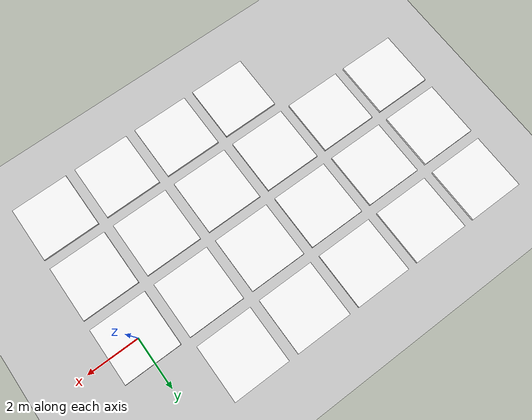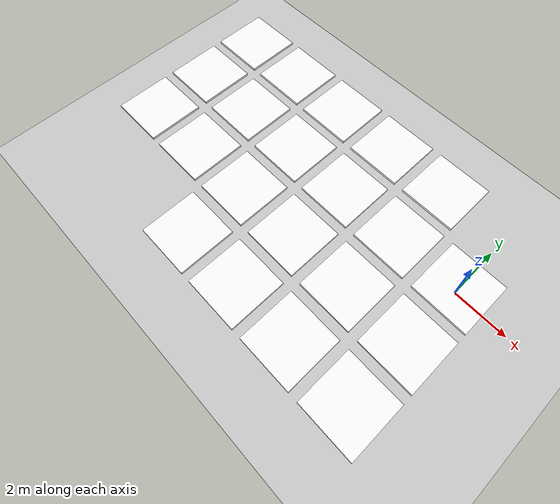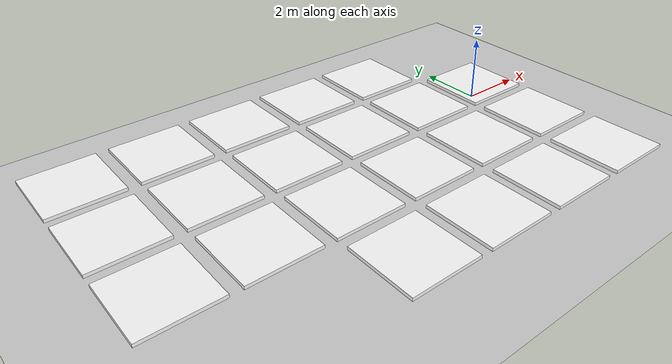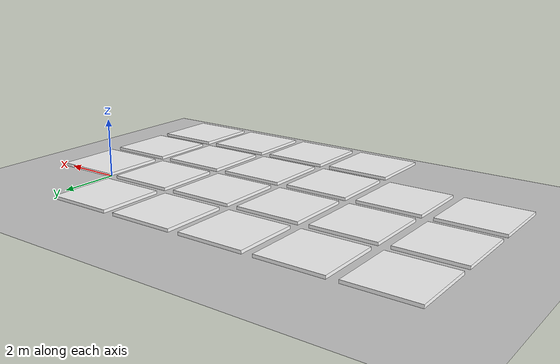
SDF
<sdf version="1.7">
 <world name="default">
  <model name="ground_plane">
   <static>1</static>
   <link name="link">
    <collision name="collision">
     <geometry><plane><normal>0 0 1</normal><size>100 100</size></plane></geometry>
     <surface>
      <contact><collide_bitmask>65535</collide_bitmask></contact>
      <friction><ode><mu>100</mu><mu2>50</mu2></ode></friction>
     </surface>
    </collision>
    <visual name="visual">
     <cast_shadows>0</cast_shadows>
     <geometry><plane><normal>0 0 1</normal><size>100 100</size></plane></geometry>
     <material>
      <script><uri>file://media/materials/scripts/gazebo.material</uri><name>Gazebo/Grey</name></script>
     </material>
    </visual>
   </link>
  </model>
  <model name="top_view_fuel_cluster_0_0">
   <link name="link">
    <inertial>
     <mass>0.489843</mass>
     <inertia>
      <ixx>0.0410659</ixx>
      <ixy>0</ixy>
      <ixz>0</ixz>
      <iyy>0.0410658</iyy>
      <iyz>0</iyz>
      <izz>0.0816405</izz>
     </inertia>
    </inertial>
    <visual name="visual">
     <geometry><box><size>2.14 2.14 0.099999</size></box></geometry>
     <material>
      <script>
       <uri>model://top_view_fuel_cluster/materials/scripts</uri>
       <uri>model://top_view_fuel_cluster/materials/textures</uri>
       <name>snf/Diffuse</name>
      </script>
      <shader type="pixel"><normal_map>__default__</normal_map></shader>
      <ambient>0.3 0.3 0.3 1</ambient>
      <diffuse>1 1 1 1</diffuse>
      <specular>0.01 0.01 0.01 1</specular>
      <emissive>0 0 0 1</emissive>
     </material>
    </visual>
    <collision name="collision">
     <geometry><box><size>2.14 2.14 0.100001</size></box></geometry>
     <surface>
      <friction>
       <ode><mu>1</mu><mu2>1</mu2><fdir1>0 0 0</fdir1><slip1>0</slip1><slip2>0</slip2></ode>
       <torsional>
        <coefficient>1</coefficient>
        <patch_radius>0</patch_radius>
        <surface_radius>0</surface_radius>
        <use_patch_radius>1</use_patch_radius>
        <ode><slip>0</slip></ode>
       </torsional>
      </friction>
      <bounce><restitution_coefficient>0</restitution_coefficient><threshold>1e+06</threshold></bounce>
      <contact>
       <collide_without_contact>0</collide_without_contact>
       <collide_without_contact_bitmask>1</collide_without_contact_bitmask>
       <collide_bitmask>1</collide_bitmask>
       <ode>
        <soft_cfm>0</soft_cfm>
        <soft_erp>0.2</soft_erp>
        <kp>1e+13</kp>
        <kd>1</kd>
        <max_vel>0.01</max_vel>
        <min_depth>0</min_depth>
       </ode>
       <bullet>
        <split_impulse>1</split_impulse>
        <split_impulse_penetration_threshold>-0.01</split_impulse_penetration_threshold>
        <soft_cfm>0</soft_cfm>
        <soft_erp>0.2</soft_erp>
        <kp>1e+13</kp>
        <kd>1</kd>
       </bullet>
      </contact>
     </surface>
    </collision>
   </link>
   <static>0</static>
   <pose>0 0 0.5 0 0 0</pose>
  </model>
  <model name="top_view_fuel_cluster_0_1">
   <link name="link">
    <inertial>
     <mass>0.489843</mass>
     <inertia>
      <ixx>0.0410659</ixx>
      <ixy>0</ixy>
      <ixz>0</ixz>
      <iyy>0.0410658</iyy>
      <iyz>0</iyz>
      <izz>0.0816405</izz>
     </inertia>
    </inertial>
    <visual name="visual">
     <geometry><box><size>2.14 2.14 0.099999</size></box></geometry>
     <material>
      <script>
       <uri>model://top_view_fuel_cluster/materials/scripts</uri>
       <uri>model://top_view_fuel_cluster/materials/textures</uri>
       <name>snf/Diffuse</name>
      </script>
      <shader type="pixel"><normal_map>__default__</normal_map></shader>
      <ambient>0.3 0.3 0.3 1</ambient>
      <diffuse>1 1 1 1</diffuse>
      <specular>0.01 0.01 0.01 1</specular>
      <emissive>0 0 0 1</emissive>
     </material>
    </visual>
    <collision name="collision">
     <geometry><box><size>2.14 2.14 0.100001</size></box></geometry>
     <surface>
      <friction>
       <ode><mu>1</mu><mu2>1</mu2><fdir1>0 0 0</fdir1><slip1>0</slip1><slip2>0</slip2></ode>
       <torsional>
        <coefficient>1</coefficient>
        <patch_radius>0</patch_radius>
        <surface_radius>0</surface_radius>
        <use_patch_radius>1</use_patch_radius>
        <ode><slip>0</slip></ode>
       </torsional>
      </friction>
      <bounce><restitution_coefficient>0</restitution_coefficient><threshold>1e+06</threshold></bounce>
      <contact>
       <collide_without_contact>0</collide_without_contact>
       <collide_without_contact_bitmask>1</collide_without_contact_bitmask>
       <collide_bitmask>1</collide_bitmask>
       <ode>
        <soft_cfm>0</soft_cfm>
        <soft_erp>0.2</soft_erp>
        <kp>1e+13</kp>
        <kd>1</kd>
        <max_vel>0.01</max_vel>
        <min_depth>0</min_depth>
       </ode>
       <bullet>
        <split_impulse>1</split_impulse>
        <split_impulse_penetration_threshold>-0.01</split_impulse_penetration_threshold>
        <soft_cfm>0</soft_cfm>
        <soft_erp>0.2</soft_erp>
        <kp>1e+13</kp>
        <kd>1</kd>
       </bullet>
      </contact>
     </surface>
    </collision>
   </link>
   <static>0</static>
   <pose>-12.5 0 0.5 0 -0 0</pose>
  </model>
  <model name="top_view_fuel_cluster_0_2">
   <link name="link">
    <inertial>
     <mass>0.489843</mass>
     <inertia>
      <ixx>0.0410659</ixx>
      <ixy>0</ixy>
      <ixz>0</ixz>
      <iyy>0.0410658</iyy>
      <iyz>0</iyz>
      <izz>0.0816405</izz>
     </inertia>
    </inertial>
    <visual name="visual">
     <geometry><box><size>2.14 2.14 0.099999</size></box></geometry>
     <material>
      <script>
       <uri>model://top_view_fuel_cluster/materials/scripts</uri>
       <uri>model://top_view_fuel_cluster/materials/textures</uri>
       <name>snf/Diffuse</name>
      </script>
      <shader type="pixel"><normal_map>__default__</normal_map></shader>
      <ambient>0.3 0.3 0.3 1</ambient>
      <diffuse>1 1 1 1</diffuse>
      <specular>0.01 0.01 0.01 1</specular>
      <emissive>0 0 0 1</emissive>
     </material>
    </visual>
    <collision name="collision">
     <geometry><box><size>2.14 2.14 0.100001</size></box></geometry>
     <surface>
      <friction>
       <ode><mu>1</mu><mu2>1</mu2><fdir1>0 0 0</fdir1><slip1>0</slip1><slip2>0</slip2></ode>
       <torsional>
        <coefficient>1</coefficient>
        <patch_radius>0</patch_radius>
        <surface_radius>0</surface_radius>
        <use_patch_radius>1</use_patch_radius>
        <ode><slip>0</slip></ode>
       </torsional>
      </friction>
      <bounce><restitution_coefficient>0</restitution_coefficient><threshold>1e+06</threshold></bounce>
      <contact>
       <collide_without_contact>0</collide_without_contact>
       <collide_without_contact_bitmask>1</collide_without_contact_bitmask>
       <collide_bitmask>1</collide_bitmask>
       <ode>
        <soft_cfm>0</soft_cfm>
        <soft_erp>0.2</soft_erp>
        <kp>1e+13</kp>
        <kd>1</kd>
        <max_vel>0.01</max_vel>
        <min_depth>0</min_depth>
       </ode>
       <bullet>
        <split_impulse>1</split_impulse>
        <split_impulse_penetration_threshold>-0.01</split_impulse_penetration_threshold>
        <soft_cfm>0</soft_cfm>
        <soft_erp>0.2</soft_erp>
        <kp>1e+13</kp>
        <kd>1</kd>
       </bullet>
      </contact>
     </surface>
    </collision>
   </link>
   <static>0</static>
   <pose>-10 0 0.5 0 -0 0</pose>
  </model>
  <model name="top_view_fuel_cluster_0_3">
   <link name="link">
    <inertial>
     <mass>0.489843</mass>
     <inertia>
      <ixx>0.0410659</ixx>
      <ixy>0</ixy>
      <ixz>0</ixz>
      <iyy>0.0410658</iyy>
      <iyz>0</iyz>
      <izz>0.0816405</izz>
     </inertia>
    </inertial>
    <visual name="visual">
     <geometry><box><size>2.14 2.14 0.099999</size></box></geometry>
     <material>
      <script>
       <uri>model://top_view_fuel_cluster/materials/scripts</uri>
       <uri>model://top_view_fuel_cluster/materials/textures</uri>
       <name>snf/Diffuse</name>
      </script>
      <shader type="pixel"><normal_map>__default__</normal_map></shader>
      <ambient>0.3 0.3 0.3 1</ambient>
      <diffuse>1 1 1 1</diffuse>
      <specular>0.01 0.01 0.01 1</specular>
      <emissive>0 0 0 1</emissive>
     </material>
    </visual>
    <collision name="collision">
     <geometry><box><size>2.14 2.14 0.100001</size></box></geometry>
     <surface>
      <friction>
       <ode><mu>1</mu><mu2>1</mu2><fdir1>0 0 0</fdir1><slip1>0</slip1><slip2>0</slip2></ode>
       <torsional>
        <coefficient>1</coefficient>
        <patch_radius>0</patch_radius>
        <surface_radius>0</surface_radius>
        <use_patch_radius>1</use_patch_radius>
        <ode><slip>0</slip></ode>
       </torsional>
      </friction>
      <bounce><restitution_coefficient>0</restitution_coefficient><threshold>1e+06</threshold></bounce>
      <contact>
       <collide_without_contact>0</collide_without_contact>
       <collide_without_contact_bitmask>1</collide_without_contact_bitmask>
       <collide_bitmask>1</collide_bitmask>
       <ode>
        <soft_cfm>0</soft_cfm>
        <soft_erp>0.2</soft_erp>
        <kp>1e+13</kp>
        <kd>1</kd>
        <max_vel>0.01</max_vel>
        <min_depth>0</min_depth>
       </ode>
       <bullet>
        <split_impulse>1</split_impulse>
        <split_impulse_penetration_threshold>-0.01</split_impulse_penetration_threshold>
        <soft_cfm>0</soft_cfm>
        <soft_erp>0.2</soft_erp>
        <kp>1e+13</kp>
        <kd>1</kd>
       </bullet>
      </contact>
     </surface>
    </collision>
   </link>
   <static>0</static>
   <pose>-7.5 0 0.5 0 -0 0</pose>
  </model>
  <model name="top_view_fuel_cluster_0_4">
   <link name="link">
    <inertial>
     <mass>0.489843</mass>
     <inertia>
      <ixx>0.0410659</ixx>
      <ixy>0</ixy>
      <ixz>0</ixz>
      <iyy>0.0410658</iyy>
      <iyz>0</iyz>
      <izz>0.0816405</izz>
     </inertia>
    </inertial>
    <visual name="visual">
     <geometry><box><size>2.14 2.14 0.099999</size></box></geometry>
     <material>
      <script>
       <uri>model://top_view_fuel_cluster/materials/scripts</uri>
       <uri>model://top_view_fuel_cluster/materials/textures</uri>
       <name>snf/Diffuse</name>
      </script>
      <shader type="pixel"><normal_map>__default__</normal_map></shader>
      <ambient>0.3 0.3 0.3 1</ambient>
      <diffuse>1 1 1 1</diffuse>
      <specular>0.01 0.01 0.01 1</specular>
      <emissive>0 0 0 1</emissive>
     </material>
    </visual>
    <collision name="collision">
     <geometry><box><size>2.14 2.14 0.100001</size></box></geometry>
     <surface>
      <friction>
       <ode><mu>1</mu><mu2>1</mu2><fdir1>0 0 0</fdir1><slip1>0</slip1><slip2>0</slip2></ode>
       <torsional>
        <coefficient>1</coefficient>
        <patch_radius>0</patch_radius>
        <surface_radius>0</surface_radius>
        <use_patch_radius>1</use_patch_radius>
        <ode><slip>0</slip></ode>
       </torsional>
      </friction>
      <bounce><restitution_coefficient>0</restitution_coefficient><threshold>1e+06</threshold></bounce>
      <contact>
       <collide_without_contact>0</collide_without_contact>
       <collide_without_contact_bitmask>1</collide_without_contact_bitmask>
       <collide_bitmask>1</collide_bitmask>
       <ode>
        <soft_cfm>0</soft_cfm>
        <soft_erp>0.2</soft_erp>
        <kp>1e+13</kp>
        <kd>1</kd>
        <max_vel>0.01</max_vel>
        <min_depth>0</min_depth>
       </ode>
       <bullet>
        <split_impulse>1</split_impulse>
        <split_impulse_penetration_threshold>-0.01</split_impulse_penetration_threshold>
        <soft_cfm>0</soft_cfm>
        <soft_erp>0.2</soft_erp>
        <kp>1e+13</kp>
        <kd>1</kd>
       </bullet>
      </contact>
     </surface>
    </collision>
   </link>
   <static>0</static>
   <pose>-5 0 0.5 0 -0 0</pose>
  </model>
  <model name="top_view_fuel_cluster_0_5">
   <link name="link">
    <inertial>
     <mass>0.489843</mass>
     <inertia>
      <ixx>0.0410659</ixx>
      <ixy>0</ixy>
      <ixz>0</ixz>
      <iyy>0.0410658</iyy>
      <iyz>0</iyz>
      <izz>0.0816405</izz>
     </inertia>
    </inertial>
    <visual name="visual">
     <geometry><box><size>2.14 2.14 0.099999</size></box></geometry>
     <material>
      <script>
       <uri>model://top_view_fuel_cluster/materials/scripts</uri>
       <uri>model://top_view_fuel_cluster/materials/textures</uri>
       <name>snf/Diffuse</name>
      </script>
      <shader type="pixel"><normal_map>__default__</normal_map></shader>
      <ambient>0.3 0.3 0.3 1</ambient>
      <diffuse>1 1 1 1</diffuse>
      <specular>0.01 0.01 0.01 1</specular>
      <emissive>0 0 0 1</emissive>
     </material>
    </visual>
    <collision name="collision">
     <geometry><box><size>2.14 2.14 0.100001</size></box></geometry>
     <surface>
      <friction>
       <ode><mu>1</mu><mu2>1</mu2><fdir1>0 0 0</fdir1><slip1>0</slip1><slip2>0</slip2></ode>
       <torsional>
        <coefficient>1</coefficient>
        <patch_radius>0</patch_radius>
        <surface_radius>0</surface_radius>
        <use_patch_radius>1</use_patch_radius>
        <ode><slip>0</slip></ode>
       </torsional>
      </friction>
      <bounce><restitution_coefficient>0</restitution_coefficient><threshold>1e+06</threshold></bounce>
      <contact>
       <collide_without_contact>0</collide_without_contact>
       <collide_without_contact_bitmask>1</collide_without_contact_bitmask>
       <collide_bitmask>1</collide_bitmask>
       <ode>
        <soft_cfm>0</soft_cfm>
        <soft_erp>0.2</soft_erp>
        <kp>1e+13</kp>
        <kd>1</kd>
        <max_vel>0.01</max_vel>
        <min_depth>0</min_depth>
       </ode>
       <bullet>
        <split_impulse>1</split_impulse>
        <split_impulse_penetration_threshold>-0.01</split_impulse_penetration_threshold>
        <soft_cfm>0</soft_cfm>
        <soft_erp>0.2</soft_erp>
        <kp>1e+13</kp>
        <kd>1</kd>
       </bullet>
      </contact>
     </surface>
    </collision>
   </link>
   <static>0</static>
   <pose>-2.5 0 0.5 0 -0 0</pose>
  </model>
  <model name="top_view_fuel_cluster_4_0">
   <link name="link">
    <inertial>
     <mass>0.489843</mass>
     <inertia>
      <ixx>0.0410659</ixx>
      <ixy>0</ixy>
      <ixz>0</ixz>
      <iyy>0.0410658</iyy>
      <iyz>0</iyz>
      <izz>0.0816405</izz>
     </inertia>
    </inertial>
    <visual name="visual">
     <geometry><box><size>2.14 2.14 0.099999</size></box></geometry>
     <material>
      <script>
       <uri>model://top_view_fuel_cluster/materials/scripts</uri>
       <uri>model://top_view_fuel_cluster/materials/textures</uri>
       <name>snf/Diffuse</name>
      </script>
      <shader type="pixel"><normal_map>__default__</normal_map></shader>
      <ambient>0.3 0.3 0.3 1</ambient>
      <diffuse>1 1 1 1</diffuse>
      <specular>0.01 0.01 0.01 1</specular>
      <emissive>0 0 0 1</emissive>
     </material>
    </visual>
    <collision name="collision">
     <geometry><box><size>2.14 2.14 0.100001</size></box></geometry>
     <surface>
      <friction>
       <ode><mu>1</mu><mu2>1</mu2><fdir1>0 0 0</fdir1><slip1>0</slip1><slip2>0</slip2></ode>
       <torsional>
        <coefficient>1</coefficient>
        <patch_radius>0</patch_radius>
        <surface_radius>0</surface_radius>
        <use_patch_radius>1</use_patch_radius>
        <ode><slip>0</slip></ode>
       </torsional>
      </friction>
      <bounce><restitution_coefficient>0</restitution_coefficient><threshold>1e+06</threshold></bounce>
      <contact>
       <collide_without_contact>0</collide_without_contact>
       <collide_without_contact_bitmask>1</collide_without_contact_bitmask>
       <collide_bitmask>1</collide_bitmask>
       <ode>
        <soft_cfm>0</soft_cfm>
        <soft_erp>0.2</soft_erp>
        <kp>1e+13</kp>
        <kd>1</kd>
        <max_vel>0.01</max_vel>
        <min_depth>0</min_depth>
       </ode>
       <bullet>
        <split_impulse>1</split_impulse>
        <split_impulse_penetration_threshold>-0.01</split_impulse_penetration_threshold>
        <soft_cfm>0</soft_cfm>
        <soft_erp>0.2</soft_erp>
        <kp>1e+13</kp>
        <kd>1</kd>
       </bullet>
      </contact>
     </surface>
    </collision>
   </link>
   <static>0</static>
   <pose>0 -5 0.5 0 0 0</pose>
  </model>
  <model name="top_view_fuel_cluster_4_3">
   <link name="link">
    <inertial>
     <mass>0.489843</mass>
     <inertia>
      <ixx>0.0410659</ixx>
      <ixy>0</ixy>
      <ixz>0</ixz>
      <iyy>0.0410658</iyy>
      <iyz>0</iyz>
      <izz>0.0816405</izz>
     </inertia>
    </inertial>
    <visual name="visual">
     <geometry><box><size>2.14 2.14 0.099999</size></box></geometry>
     <material>
      <script>
       <uri>model://top_view_fuel_cluster/materials/scripts</uri>
       <uri>model://top_view_fuel_cluster/materials/textures</uri>
       <name>snf/Diffuse</name>
      </script>
      <shader type="pixel"><normal_map>__default__</normal_map></shader>
      <ambient>0.3 0.3 0.3 1</ambient>
      <diffuse>1 1 1 1</diffuse>
      <specular>0.01 0.01 0.01 1</specular>
      <emissive>0 0 0 1</emissive>
     </material>
    </visual>
    <collision name="collision">
     <geometry><box><size>2.14 2.14 0.100001</size></box></geometry>
     <surface>
      <friction>
       <ode><mu>1</mu><mu2>1</mu2><fdir1>0 0 0</fdir1><slip1>0</slip1><slip2>0</slip2></ode>
       <torsional>
        <coefficient>1</coefficient>
        <patch_radius>0</patch_radius>
        <surface_radius>0</surface_radius>
        <use_patch_radius>1</use_patch_radius>
        <ode><slip>0</slip></ode>
       </torsional>
      </friction>
      <bounce><restitution_coefficient>0</restitution_coefficient><threshold>1e+06</threshold></bounce>
      <contact>
       <collide_without_contact>0</collide_without_contact>
       <collide_without_contact_bitmask>1</collide_without_contact_bitmask>
       <collide_bitmask>1</collide_bitmask>
       <ode>
        <soft_cfm>0</soft_cfm>
        <soft_erp>0.2</soft_erp>
        <kp>1e+13</kp>
        <kd>1</kd>
        <max_vel>0.01</max_vel>
        <min_depth>0</min_depth>
       </ode>
       <bullet>
        <split_impulse>1</split_impulse>
        <split_impulse_penetration_threshold>-0.01</split_impulse_penetration_threshold>
        <soft_cfm>0</soft_cfm>
        <soft_erp>0.2</soft_erp>
        <kp>1e+13</kp>
        <kd>1</kd>
       </bullet>
      </contact>
     </surface>
    </collision>
   </link>
   <static>0</static>
   <pose>-7.5 -5 0.5 0 -0 0</pose>
  </model>
  <model name="top_view_fuel_cluster_4_4">
   <link name="link">
    <inertial>
     <mass>0.489843</mass>
     <inertia>
      <ixx>0.0410659</ixx>
      <ixy>0</ixy>
      <ixz>0</ixz>
      <iyy>0.0410658</iyy>
      <iyz>0</iyz>
      <izz>0.0816405</izz>
     </inertia>
    </inertial>
    <visual name="visual">
     <geometry><box><size>2.14 2.14 0.099999</size></box></geometry>
     <material>
      <script>
       <uri>model://top_view_fuel_cluster/materials/scripts</uri>
       <uri>model://top_view_fuel_cluster/materials/textures</uri>
       <name>snf/Diffuse</name>
      </script>
      <shader type="pixel"><normal_map>__default__</normal_map></shader>
      <ambient>0.3 0.3 0.3 1</ambient>
      <diffuse>1 1 1 1</diffuse>
      <specular>0.01 0.01 0.01 1</specular>
      <emissive>0 0 0 1</emissive>
     </material>
    </visual>
    <collision name="collision">
     <geometry><box><size>2.14 2.14 0.100001</size></box></geometry>
     <surface>
      <friction>
       <ode><mu>1</mu><mu2>1</mu2><fdir1>0 0 0</fdir1><slip1>0</slip1><slip2>0</slip2></ode>
       <torsional>
        <coefficient>1</coefficient>
        <patch_radius>0</patch_radius>
        <surface_radius>0</surface_radius>
        <use_patch_radius>1</use_patch_radius>
        <ode><slip>0</slip></ode>
       </torsional>
      </friction>
      <bounce><restitution_coefficient>0</restitution_coefficient><threshold>1e+06</threshold></bounce>
      <contact>
       <collide_without_contact>0</collide_without_contact>
       <collide_without_contact_bitmask>1</collide_without_contact_bitmask>
       <collide_bitmask>1</collide_bitmask>
       <ode>
        <soft_cfm>0</soft_cfm>
        <soft_erp>0.2</soft_erp>
        <kp>1e+13</kp>
        <kd>1</kd>
        <max_vel>0.01</max_vel>
        <min_depth>0</min_depth>
       </ode>
       <bullet>
        <split_impulse>1</split_impulse>
        <split_impulse_penetration_threshold>-0.01</split_impulse_penetration_threshold>
        <soft_cfm>0</soft_cfm>
        <soft_erp>0.2</soft_erp>
        <kp>1e+13</kp>
        <kd>1</kd>
       </bullet>
      </contact>
     </surface>
    </collision>
   </link>
   <static>0</static>
   <pose>-5 -5 0.5 0 -0 0</pose>
  </model>
  <model name="top_view_fuel_cluster_4_5">
   <link name="link">
    <inertial>
     <mass>0.489843</mass>
     <inertia>
      <ixx>0.0410659</ixx>
      <ixy>0</ixy>
      <ixz>0</ixz>
      <iyy>0.0410658</iyy>
      <iyz>0</iyz>
      <izz>0.0816405</izz>
     </inertia>
    </inertial>
    <visual name="visual">
     <geometry><box><size>2.14 2.14 0.099999</size></box></geometry>
     <material>
      <script>
       <uri>model://top_view_fuel_cluster/materials/scripts</uri>
       <uri>model://top_view_fuel_cluster/materials/textures</uri>
       <name>snf/Diffuse</name>
      </script>
      <shader type="pixel"><normal_map>__default__</normal_map></shader>
      <ambient>0.3 0.3 0.3 1</ambient>
      <diffuse>1 1 1 1</diffuse>
      <specular>0.01 0.01 0.01 1</specular>
      <emissive>0 0 0 1</emissive>
     </material>
    </visual>
    <collision name="collision">
     <geometry><box><size>2.14 2.14 0.100001</size></box></geometry>
     <surface>
      <friction>
       <ode><mu>1</mu><mu2>1</mu2><fdir1>0 0 0</fdir1><slip1>0</slip1><slip2>0</slip2></ode>
       <torsional>
        <coefficient>1</coefficient>
        <patch_radius>0</patch_radius>
        <surface_radius>0</surface_radius>
        <use_patch_radius>1</use_patch_radius>
        <ode><slip>0</slip></ode>
       </torsional>
      </friction>
      <bounce><restitution_coefficient>0</restitution_coefficient><threshold>1e+06</threshold></bounce>
      <contact>
       <collide_without_contact>0</collide_without_contact>
       <collide_without_contact_bitmask>1</collide_without_contact_bitmask>
       <collide_bitmask>1</collide_bitmask>
       <ode>
        <soft_cfm>0</soft_cfm>
        <soft_erp>0.2</soft_erp>
        <kp>1e+13</kp>
        <kd>1</kd>
        <max_vel>0.01</max_vel>
        <min_depth>0</min_depth>
       </ode>
       <bullet>
        <split_impulse>1</split_impulse>
        <split_impulse_penetration_threshold>-0.01</split_impulse_penetration_threshold>
        <soft_cfm>0</soft_cfm>
        <soft_erp>0.2</soft_erp>
        <kp>1e+13</kp>
        <kd>1</kd>
       </bullet>
      </contact>
     </surface>
    </collision>
   </link>
   <static>0</static>
   <pose>-2.5 -5 0.5 0 -0 0</pose>
  </model>
  <model name="top_view_fuel_cluster_5_0">
   <link name="link">
    <inertial>
     <mass>0.489843</mass>
     <inertia>
      <ixx>0.0410659</ixx>
      <ixy>0</ixy>
      <ixz>0</ixz>
      <iyy>0.0410658</iyy>
      <iyz>0</iyz>
      <izz>0.0816405</izz>
     </inertia>
    </inertial>
    <visual name="visual">
     <geometry><box><size>2.14 2.14 0.099999</size></box></geometry>
     <material>
      <script>
       <uri>model://top_view_fuel_cluster/materials/scripts</uri>
       <uri>model://top_view_fuel_cluster/materials/textures</uri>
       <name>snf/Diffuse</name>
      </script>
      <shader type="pixel"><normal_map>__default__</normal_map></shader>
      <ambient>0.3 0.3 0.3 1</ambient>
      <diffuse>1 1 1 1</diffuse>
      <specular>0.01 0.01 0.01 1</specular>
      <emissive>0 0 0 1</emissive>
     </material>
    </visual>
    <collision name="collision">
     <geometry><box><size>2.14 2.14 0.100001</size></box></geometry>
     <surface>
      <friction>
       <ode><mu>1</mu><mu2>1</mu2><fdir1>0 0 0</fdir1><slip1>0</slip1><slip2>0</slip2></ode>
       <torsional>
        <coefficient>1</coefficient>
        <patch_radius>0</patch_radius>
        <surface_radius>0</surface_radius>
        <use_patch_radius>1</use_patch_radius>
        <ode><slip>0</slip></ode>
       </torsional>
      </friction>
      <bounce><restitution_coefficient>0</restitution_coefficient><threshold>1e+06</threshold></bounce>
      <contact>
       <collide_without_contact>0</collide_without_contact>
       <collide_without_contact_bitmask>1</collide_without_contact_bitmask>
       <collide_bitmask>1</collide_bitmask>
       <ode>
        <soft_cfm>0</soft_cfm>
        <soft_erp>0.2</soft_erp>
        <kp>1e+13</kp>
        <kd>1</kd>
        <max_vel>0.01</max_vel>
        <min_depth>0</min_depth>
       </ode>
       <bullet>
        <split_impulse>1</split_impulse>
        <split_impulse_penetration_threshold>-0.01</split_impulse_penetration_threshold>
        <soft_cfm>0</soft_cfm>
        <soft_erp>0.2</soft_erp>
        <kp>1e+13</kp>
        <kd>1</kd>
       </bullet>
      </contact>
     </surface>
    </collision>
   </link>
   <static>0</static>
   <pose>0 -2.5 0.5 0 0 0</pose>
  </model>
  <model name="top_view_fuel_cluster_5_1">
   <link name="link">
    <inertial>
     <mass>0.489843</mass>
     <inertia>
      <ixx>0.0410659</ixx>
      <ixy>0</ixy>
      <ixz>0</ixz>
      <iyy>0.0410658</iyy>
      <iyz>0</iyz>
      <izz>0.0816405</izz>
     </inertia>
    </inertial>
    <visual name="visual">
     <geometry><box><size>2.14 2.14 0.099999</size></box></geometry>
     <material>
      <script>
       <uri>model://top_view_fuel_cluster/materials/scripts</uri>
       <uri>model://top_view_fuel_cluster/materials/textures</uri>
       <name>snf/Diffuse</name>
      </script>
      <shader type="pixel"><normal_map>__default__</normal_map></shader>
      <ambient>0.3 0.3 0.3 1</ambient>
      <diffuse>1 1 1 1</diffuse>
      <specular>0.01 0.01 0.01 1</specular>
      <emissive>0 0 0 1</emissive>
     </material>
    </visual>
    <collision name="collision">
     <geometry><box><size>2.14 2.14 0.100001</size></box></geometry>
     <surface>
      <friction>
       <ode><mu>1</mu><mu2>1</mu2><fdir1>0 0 0</fdir1><slip1>0</slip1><slip2>0</slip2></ode>
       <torsional>
        <coefficient>1</coefficient>
        <patch_radius>0</patch_radius>
        <surface_radius>0</surface_radius>
        <use_patch_radius>1</use_patch_radius>
        <ode><slip>0</slip></ode>
       </torsional>
      </friction>
      <bounce><restitution_coefficient>0</restitution_coefficient><threshold>1e+06</threshold></bounce>
      <contact>
       <collide_without_contact>0</collide_without_contact>
       <collide_without_contact_bitmask>1</collide_without_contact_bitmask>
       <collide_bitmask>1</collide_bitmask>
       <ode>
        <soft_cfm>0</soft_cfm>
        <soft_erp>0.2</soft_erp>
        <kp>1e+13</kp>
        <kd>1</kd>
        <max_vel>0.01</max_vel>
        <min_depth>0</min_depth>
       </ode>
       <bullet>
        <split_impulse>1</split_impulse>
        <split_impulse_penetration_threshold>-0.01</split_impulse_penetration_threshold>
        <soft_cfm>0</soft_cfm>
        <soft_erp>0.2</soft_erp>
        <kp>1e+13</kp>
        <kd>1</kd>
       </bullet>
      </contact>
     </surface>
    </collision>
   </link>
   <static>0</static>
   <pose>-12.5 -2.5 0.5 0 -0 0</pose>
  </model>
  <model name="top_view_fuel_cluster_5_2">
   <link name="link">
    <inertial>
     <mass>0.489843</mass>
     <inertia>
      <ixx>0.0410659</ixx>
      <ixy>0</ixy>
      <ixz>0</ixz>
      <iyy>0.0410658</iyy>
      <iyz>0</iyz>
      <izz>0.0816405</izz>
     </inertia>
    </inertial>
    <visual name="visual">
     <geometry><box><size>2.14 2.14 0.099999</size></box></geometry>
     <material>
      <script>
       <uri>model://top_view_fuel_cluster/materials/scripts</uri>
       <uri>model://top_view_fuel_cluster/materials/textures</uri>
       <name>snf/Diffuse</name>
      </script>
      <shader type="pixel"><normal_map>__default__</normal_map></shader>
      <ambient>0.3 0.3 0.3 1</ambient>
      <diffuse>1 1 1 1</diffuse>
      <specular>0.01 0.01 0.01 1</specular>
      <emissive>0 0 0 1</emissive>
     </material>
    </visual>
    <collision name="collision">
     <geometry><box><size>2.14 2.14 0.100001</size></box></geometry>
     <surface>
      <friction>
       <ode><mu>1</mu><mu2>1</mu2><fdir1>0 0 0</fdir1><slip1>0</slip1><slip2>0</slip2></ode>
       <torsional>
        <coefficient>1</coefficient>
        <patch_radius>0</patch_radius>
        <surface_radius>0</surface_radius>
        <use_patch_radius>1</use_patch_radius>
        <ode><slip>0</slip></ode>
       </torsional>
      </friction>
      <bounce><restitution_coefficient>0</restitution_coefficient><threshold>1e+06</threshold></bounce>
      <contact>
       <collide_without_contact>0</collide_without_contact>
       <collide_without_contact_bitmask>1</collide_without_contact_bitmask>
       <collide_bitmask>1</collide_bitmask>
       <ode>
        <soft_cfm>0</soft_cfm>
        <soft_erp>0.2</soft_erp>
        <kp>1e+13</kp>
        <kd>1</kd>
        <max_vel>0.01</max_vel>
        <min_depth>0</min_depth>
       </ode>
       <bullet>
        <split_impulse>1</split_impulse>
        <split_impulse_penetration_threshold>-0.01</split_impulse_penetration_threshold>
        <soft_cfm>0</soft_cfm>
        <soft_erp>0.2</soft_erp>
        <kp>1e+13</kp>
        <kd>1</kd>
       </bullet>
      </contact>
     </surface>
    </collision>
   </link>
   <static>0</static>
   <pose>-10 -2.5 0.5 0 -0 0</pose>
  </model>
  <model name="top_view_fuel_cluster_5_3">
   <link name="link">
    <inertial>
     <mass>0.489843</mass>
     <inertia>
      <ixx>0.0410659</ixx>
      <ixy>0</ixy>
      <ixz>0</ixz>
      <iyy>0.0410658</iyy>
      <iyz>0</iyz>
      <izz>0.0816405</izz>
     </inertia>
    </inertial>
    <visual name="visual">
     <geometry><box><size>2.14 2.14 0.099999</size></box></geometry>
     <material>
      <script>
       <uri>model://top_view_fuel_cluster/materials/scripts</uri>
       <uri>model://top_view_fuel_cluster/materials/textures</uri>
       <name>snf/Diffuse</name>
      </script>
      <shader type="pixel"><normal_map>__default__</normal_map></shader>
      <ambient>0.3 0.3 0.3 1</ambient>
      <diffuse>1 1 1 1</diffuse>
      <specular>0.01 0.01 0.01 1</specular>
      <emissive>0 0 0 1</emissive>
     </material>
    </visual>
    <collision name="collision">
     <geometry><box><size>2.14 2.14 0.100001</size></box></geometry>
     <surface>
      <friction>
       <ode><mu>1</mu><mu2>1</mu2><fdir1>0 0 0</fdir1><slip1>0</slip1><slip2>0</slip2></ode>
       <torsional>
        <coefficient>1</coefficient>
        <patch_radius>0</patch_radius>
        <surface_radius>0</surface_radius>
        <use_patch_radius>1</use_patch_radius>
        <ode><slip>0</slip></ode>
       </torsional>
      </friction>
      <bounce><restitution_coefficient>0</restitution_coefficient><threshold>1e+06</threshold></bounce>
      <contact>
       <collide_without_contact>0</collide_without_contact>
       <collide_without_contact_bitmask>1</collide_without_contact_bitmask>
       <collide_bitmask>1</collide_bitmask>
       <ode>
        <soft_cfm>0</soft_cfm>
        <soft_erp>0.2</soft_erp>
        <kp>1e+13</kp>
        <kd>1</kd>
        <max_vel>0.01</max_vel>
        <min_depth>0</min_depth>
       </ode>
       <bullet>
        <split_impulse>1</split_impulse>
        <split_impulse_penetration_threshold>-0.01</split_impulse_penetration_threshold>
        <soft_cfm>0</soft_cfm>
        <soft_erp>0.2</soft_erp>
        <kp>1e+13</kp>
        <kd>1</kd>
       </bullet>
      </contact>
     </surface>
    </collision>
   </link>
   <static>0</static>
   <pose>-7.5 -2.5 0.5 0 -0 0</pose>
  </model>
  <model name="top_view_fuel_cluster_5_4">
   <link name="link">
    <inertial>
     <mass>0.489843</mass>
     <inertia>
      <ixx>0.0410659</ixx>
      <ixy>0</ixy>
      <ixz>0</ixz>
      <iyy>0.0410658</iyy>
      <iyz>0</iyz>
      <izz>0.0816405</izz>
     </inertia>
    </inertial>
    <visual name="visual">
     <geometry><box><size>2.14 2.14 0.099999</size></box></geometry>
     <material>
      <script>
       <uri>model://top_view_fuel_cluster/materials/scripts</uri>
       <uri>model://top_view_fuel_cluster/materials/textures</uri>
       <name>snf/Diffuse</name>
      </script>
      <shader type="pixel"><normal_map>__default__</normal_map></shader>
      <ambient>0.3 0.3 0.3 1</ambient>
      <diffuse>1 1 1 1</diffuse>
      <specular>0.01 0.01 0.01 1</specular>
      <emissive>0 0 0 1</emissive>
     </material>
    </visual>
    <collision name="collision">
     <geometry><box><size>2.14 2.14 0.100001</size></box></geometry>
     <surface>
      <friction>
       <ode><mu>1</mu><mu2>1</mu2><fdir1>0 0 0</fdir1><slip1>0</slip1><slip2>0</slip2></ode>
       <torsional>
        <coefficient>1</coefficient>
        <patch_radius>0</patch_radius>
        <surface_radius>0</surface_radius>
        <use_patch_radius>1</use_patch_radius>
        <ode><slip>0</slip></ode>
       </torsional>
      </friction>
      <bounce><restitution_coefficient>0</restitution_coefficient><threshold>1e+06</threshold></bounce>
      <contact>
       <collide_without_contact>0</collide_without_contact>
       <collide_without_contact_bitmask>1</collide_without_contact_bitmask>
       <collide_bitmask>1</collide_bitmask>
       <ode>
        <soft_cfm>0</soft_cfm>
        <soft_erp>0.2</soft_erp>
        <kp>1e+13</kp>
        <kd>1</kd>
        <max_vel>0.01</max_vel>
        <min_depth>0</min_depth>
       </ode>
       <bullet>
        <split_impulse>1</split_impulse>
        <split_impulse_penetration_threshold>-0.01</split_impulse_penetration_threshold>
        <soft_cfm>0</soft_cfm>
        <soft_erp>0.2</soft_erp>
        <kp>1e+13</kp>
        <kd>1</kd>
       </bullet>
      </contact>
     </surface>
    </collision>
   </link>
   <static>0</static>
   <pose>-5 -2.5 0.5 0 -0 0</pose>
  </model>
  <model name="top_view_fuel_cluster_5_5">
   <link name="link">
    <inertial>
     <mass>0.489843</mass>
     <inertia>
      <ixx>0.0410659</ixx>
      <ixy>0</ixy>
      <ixz>0</ixz>
      <iyy>0.0410658</iyy>
      <iyz>0</iyz>
      <izz>0.0816405</izz>
     </inertia>
    </inertial>
    <visual name="visual">
     <geometry><box><size>2.14 2.14 0.099999</size></box></geometry>
     <material>
      <script>
       <uri>model://top_view_fuel_cluster/materials/scripts</uri>
       <uri>model://top_view_fuel_cluster/materials/textures</uri>
       <name>snf/Diffuse</name>
      </script>
      <shader type="pixel"><normal_map>__default__</normal_map></shader>
      <ambient>0.3 0.3 0.3 1</ambient>
      <diffuse>1 1 1 1</diffuse>
      <specular>0.01 0.01 0.01 1</specular>
      <emissive>0 0 0 1</emissive>
     </material>
    </visual>
    <collision name="collision">
     <geometry><box><size>2.14 2.14 0.100001</size></box></geometry>
     <surface>
      <friction>
       <ode><mu>1</mu><mu2>1</mu2><fdir1>0 0 0</fdir1><slip1>0</slip1><slip2>0</slip2></ode>
       <torsional>
        <coefficient>1</coefficient>
        <patch_radius>0</patch_radius>
        <surface_radius>0</surface_radius>
        <use_patch_radius>1</use_patch_radius>
        <ode><slip>0</slip></ode>
       </torsional>
      </friction>
      <bounce><restitution_coefficient>0</restitution_coefficient><threshold>1e+06</threshold></bounce>
      <contact>
       <collide_without_contact>0</collide_without_contact>
       <collide_without_contact_bitmask>1</collide_without_contact_bitmask>
       <collide_bitmask>1</collide_bitmask>
       <ode>
        <soft_cfm>0</soft_cfm>
        <soft_erp>0.2</soft_erp>
        <kp>1e+13</kp>
        <kd>1</kd>
        <max_vel>0.01</max_vel>
        <min_depth>0</min_depth>
       </ode>
       <bullet>
        <split_impulse>1</split_impulse>
        <split_impulse_penetration_threshold>-0.01</split_impulse_penetration_threshold>
        <soft_cfm>0</soft_cfm>
        <soft_erp>0.2</soft_erp>
        <kp>1e+13</kp>
        <kd>1</kd>
       </bullet>
      </contact>
     </surface>
    </collision>
   </link>
   <static>0</static>
   <pose>-2.5 -2.5 0.5 0 -0 0</pose>
  </model>
  <model name="top_view_fuel_cluster_6_1">
   <link name="link">
    <inertial>
     <mass>0.489843</mass>
     <inertia>
      <ixx>0.0410659</ixx>
      <ixy>0</ixy>
      <ixz>0</ixz>
      <iyy>0.0410658</iyy>
      <iyz>0</iyz>
      <izz>0.0816405</izz>
     </inertia>
    </inertial>
    <visual name="visual">
     <geometry><box><size>2.14 2.14 0.099999</size></box></geometry>
     <material>
      <script>
       <uri>model://top_view_fuel_cluster/materials/scripts</uri>
       <uri>model://top_view_fuel_cluster/materials/textures</uri>
       <name>snf/Diffuse</name>
      </script>
      <shader type="pixel"><normal_map>__default__</normal_map></shader>
      <ambient>0.3 0.3 0.3 1</ambient>
      <diffuse>1 1 1 1</diffuse>
      <specular>0.01 0.01 0.01 1</specular>
      <emissive>0 0 0 1</emissive>
     </material>
    </visual>
    <collision name="collision">
     <geometry><box><size>2.14 2.14 0.100001</size></box></geometry>
     <surface>
      <friction>
       <ode><mu>1</mu><mu2>1</mu2><fdir1>0 0 0</fdir1><slip1>0</slip1><slip2>0</slip2></ode>
       <torsional>
        <coefficient>1</coefficient>
        <patch_radius>0</patch_radius>
        <surface_radius>0</surface_radius>
        <use_patch_radius>1</use_patch_radius>
        <ode><slip>0</slip></ode>
       </torsional>
      </friction>
      <bounce><restitution_coefficient>0</restitution_coefficient><threshold>1e+06</threshold></bounce>
      <contact>
       <collide_without_contact>0</collide_without_contact>
       <collide_without_contact_bitmask>1</collide_without_contact_bitmask>
       <collide_bitmask>1</collide_bitmask>
       <ode>
        <soft_cfm>0</soft_cfm>
        <soft_erp>0.2</soft_erp>
        <kp>1e+13</kp>
        <kd>1</kd>
        <max_vel>0.01</max_vel>
        <min_depth>0</min_depth>
       </ode>
       <bullet>
        <split_impulse>1</split_impulse>
        <split_impulse_penetration_threshold>-0.01</split_impulse_penetration_threshold>
        <soft_cfm>0</soft_cfm>
        <soft_erp>0.2</soft_erp>
        <kp>1e+13</kp>
        <kd>1</kd>
       </bullet>
      </contact>
     </surface>
    </collision>
   </link>
   <static>0</static>
   <pose>-12.5 2.5 0.5 0 -0 0</pose>
  </model>
  <model name="top_view_fuel_cluster_6_2">
   <link name="link">
    <inertial>
     <mass>0.489843</mass>
     <inertia>
      <ixx>0.0410659</ixx>
      <ixy>0</ixy>
      <ixz>0</ixz>
      <iyy>0.0410658</iyy>
      <iyz>0</iyz>
      <izz>0.0816405</izz>
     </inertia>
    </inertial>
    <visual name="visual">
     <geometry><box><size>2.14 2.14 0.099999</size></box></geometry>
     <material>
      <script>
       <uri>model://top_view_fuel_cluster/materials/scripts</uri>
       <uri>model://top_view_fuel_cluster/materials/textures</uri>
       <name>snf/Diffuse</name>
      </script>
      <shader type="pixel"><normal_map>__default__</normal_map></shader>
      <ambient>0.3 0.3 0.3 1</ambient>
      <diffuse>1 1 1 1</diffuse>
      <specular>0.01 0.01 0.01 1</specular>
      <emissive>0 0 0 1</emissive>
     </material>
    </visual>
    <collision name="collision">
     <geometry><box><size>2.14 2.14 0.100001</size></box></geometry>
     <surface>
      <friction>
       <ode><mu>1</mu><mu2>1</mu2><fdir1>0 0 0</fdir1><slip1>0</slip1><slip2>0</slip2></ode>
       <torsional>
        <coefficient>1</coefficient>
        <patch_radius>0</patch_radius>
        <surface_radius>0</surface_radius>
        <use_patch_radius>1</use_patch_radius>
        <ode><slip>0</slip></ode>
       </torsional>
      </friction>
      <bounce><restitution_coefficient>0</restitution_coefficient><threshold>1e+06</threshold></bounce>
      <contact>
       <collide_without_contact>0</collide_without_contact>
       <collide_without_contact_bitmask>1</collide_without_contact_bitmask>
       <collide_bitmask>1</collide_bitmask>
       <ode>
        <soft_cfm>0</soft_cfm>
        <soft_erp>0.2</soft_erp>
        <kp>1e+13</kp>
        <kd>1</kd>
        <max_vel>0.01</max_vel>
        <min_depth>0</min_depth>
       </ode>
       <bullet>
        <split_impulse>1</split_impulse>
        <split_impulse_penetration_threshold>-0.01</split_impulse_penetration_threshold>
        <soft_cfm>0</soft_cfm>
        <soft_erp>0.2</soft_erp>
        <kp>1e+13</kp>
        <kd>1</kd>
       </bullet>
      </contact>
     </surface>
    </collision>
   </link>
   <static>0</static>
   <pose>-10 2.5 0.5 0 -0 0</pose>
  </model>
  <model name="top_view_fuel_cluster_6_3">
   <link name="link">
    <inertial>
     <mass>0.489843</mass>
     <inertia>
      <ixx>0.0410659</ixx>
      <ixy>0</ixy>
      <ixz>0</ixz>
      <iyy>0.0410658</iyy>
      <iyz>0</iyz>
      <izz>0.0816405</izz>
     </inertia>
    </inertial>
    <visual name="visual">
     <geometry><box><size>2.14 2.14 0.099999</size></box></geometry>
     <material>
      <script>
       <uri>model://top_view_fuel_cluster/materials/scripts</uri>
       <uri>model://top_view_fuel_cluster/materials/textures</uri>
       <name>snf/Diffuse</name>
      </script>
      <shader type="pixel"><normal_map>__default__</normal_map></shader>
      <ambient>0.3 0.3 0.3 1</ambient>
      <diffuse>1 1 1 1</diffuse>
      <specular>0.01 0.01 0.01 1</specular>
      <emissive>0 0 0 1</emissive>
     </material>
    </visual>
    <collision name="collision">
     <geometry><box><size>2.14 2.14 0.100001</size></box></geometry>
     <surface>
      <friction>
       <ode><mu>1</mu><mu2>1</mu2><fdir1>0 0 0</fdir1><slip1>0</slip1><slip2>0</slip2></ode>
       <torsional>
        <coefficient>1</coefficient>
        <patch_radius>0</patch_radius>
        <surface_radius>0</surface_radius>
        <use_patch_radius>1</use_patch_radius>
        <ode><slip>0</slip></ode>
       </torsional>
      </friction>
      <bounce><restitution_coefficient>0</restitution_coefficient><threshold>1e+06</threshold></bounce>
      <contact>
       <collide_without_contact>0</collide_without_contact>
       <collide_without_contact_bitmask>1</collide_without_contact_bitmask>
       <collide_bitmask>1</collide_bitmask>
       <ode>
        <soft_cfm>0</soft_cfm>
        <soft_erp>0.2</soft_erp>
        <kp>1e+13</kp>
        <kd>1</kd>
        <max_vel>0.01</max_vel>
        <min_depth>0</min_depth>
       </ode>
       <bullet>
        <split_impulse>1</split_impulse>
        <split_impulse_penetration_threshold>-0.01</split_impulse_penetration_threshold>
        <soft_cfm>0</soft_cfm>
        <soft_erp>0.2</soft_erp>
        <kp>1e+13</kp>
        <kd>1</kd>
       </bullet>
      </contact>
     </surface>
    </collision>
   </link>
   <static>0</static>
   <pose>-7.5 2.5 0.5 0 -0 0</pose>
  </model>
  <model name="top_view_fuel_cluster_6_4">
   <link name="link">
    <inertial>
     <mass>0.489843</mass>
     <inertia>
      <ixx>0.0410659</ixx>
      <ixy>0</ixy>
      <ixz>0</ixz>
      <iyy>0.0410658</iyy>
      <iyz>0</iyz>
      <izz>0.0816405</izz>
     </inertia>
    </inertial>
    <visual name="visual">
     <geometry><box><size>2.14 2.14 0.099999</size></box></geometry>
     <material>
      <script>
       <uri>model://top_view_fuel_cluster/materials/scripts</uri>
       <uri>model://top_view_fuel_cluster/materials/textures</uri>
       <name>snf/Diffuse</name>
      </script>
      <shader type="pixel"><normal_map>__default__</normal_map></shader>
      <ambient>0.3 0.3 0.3 1</ambient>
      <diffuse>1 1 1 1</diffuse>
      <specular>0.01 0.01 0.01 1</specular>
      <emissive>0 0 0 1</emissive>
     </material>
    </visual>
    <collision name="collision">
     <geometry><box><size>2.14 2.14 0.100001</size></box></geometry>
     <surface>
      <friction>
       <ode><mu>1</mu><mu2>1</mu2><fdir1>0 0 0</fdir1><slip1>0</slip1><slip2>0</slip2></ode>
       <torsional>
        <coefficient>1</coefficient>
        <patch_radius>0</patch_radius>
        <surface_radius>0</surface_radius>
        <use_patch_radius>1</use_patch_radius>
        <ode><slip>0</slip></ode>
       </torsional>
      </friction>
      <bounce><restitution_coefficient>0</restitution_coefficient><threshold>1e+06</threshold></bounce>
      <contact>
       <collide_without_contact>0</collide_without_contact>
       <collide_without_contact_bitmask>1</collide_without_contact_bitmask>
       <collide_bitmask>1</collide_bitmask>
       <ode>
        <soft_cfm>0</soft_cfm>
        <soft_erp>0.2</soft_erp>
        <kp>1e+13</kp>
        <kd>1</kd>
        <max_vel>0.01</max_vel>
        <min_depth>0</min_depth>
       </ode>
       <bullet>
        <split_impulse>1</split_impulse>
        <split_impulse_penetration_threshold>-0.01</split_impulse_penetration_threshold>
        <soft_cfm>0</soft_cfm>
        <soft_erp>0.2</soft_erp>
        <kp>1e+13</kp>
        <kd>1</kd>
       </bullet>
      </contact>
     </surface>
    </collision>
   </link>
   <static>0</static>
   <pose>-5 2.5 0.5 0 -0 0</pose>
  </model>
  <model name="top_view_fuel_cluster_6_5">
   <link name="link">
    <inertial>
     <mass>0.489843</mass>
     <inertia>
      <ixx>0.0410659</ixx>
      <ixy>0</ixy>
      <ixz>0</ixz>
      <iyy>0.0410658</iyy>
      <iyz>0</iyz>
      <izz>0.0816405</izz>
     </inertia>
    </inertial>
    <visual name="visual">
     <geometry><box><size>2.14 2.14 0.099999</size></box></geometry>
     <material>
      <script>
       <uri>model://top_view_fuel_cluster/materials/scripts</uri>
       <uri>model://top_view_fuel_cluster/materials/textures</uri>
       <name>snf/Diffuse</name>
      </script>
      <shader type="pixel"><normal_map>__default__</normal_map></shader>
      <ambient>0.3 0.3 0.3 1</ambient>
      <diffuse>1 1 1 1</diffuse>
      <specular>0.01 0.01 0.01 1</specular>
      <emissive>0 0 0 1</emissive>
     </material>
    </visual>
    <collision name="collision">
     <geometry><box><size>2.14 2.14 0.100001</size></box></geometry>
     <surface>
      <friction>
       <ode><mu>1</mu><mu2>1</mu2><fdir1>0 0 0</fdir1><slip1>0</slip1><slip2>0</slip2></ode>
       <torsional>
        <coefficient>1</coefficient>
        <patch_radius>0</patch_radius>
        <surface_radius>0</surface_radius>
        <use_patch_radius>1</use_patch_radius>
        <ode><slip>0</slip></ode>
       </torsional>
      </friction>
      <bounce><restitution_coefficient>0</restitution_coefficient><threshold>1e+06</threshold></bounce>
      <contact>
       <collide_without_contact>0</collide_without_contact>
       <collide_without_contact_bitmask>1</collide_without_contact_bitmask>
       <collide_bitmask>1</collide_bitmask>
       <ode>
        <soft_cfm>0</soft_cfm>
        <soft_erp>0.2</soft_erp>
        <kp>1e+13</kp>
        <kd>1</kd>
        <max_vel>0.01</max_vel>
        <min_depth>0</min_depth>
       </ode>
       <bullet>
        <split_impulse>1</split_impulse>
        <split_impulse_penetration_threshold>-0.01</split_impulse_penetration_threshold>
        <soft_cfm>0</soft_cfm>
        <soft_erp>0.2</soft_erp>
        <kp>1e+13</kp>
        <kd>1</kd>
       </bullet>
      </contact>
     </surface>
    </collision>
   </link>
   <static>0</static>
   <pose>-2.5 2.5 0.5 0 -0 0</pose>
  </model>
 </world>
</sdf>
